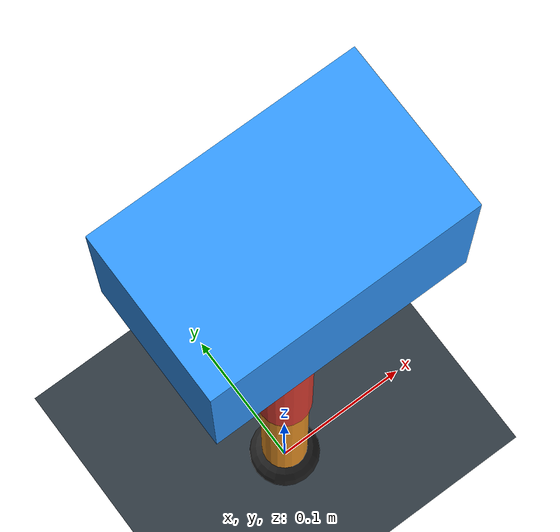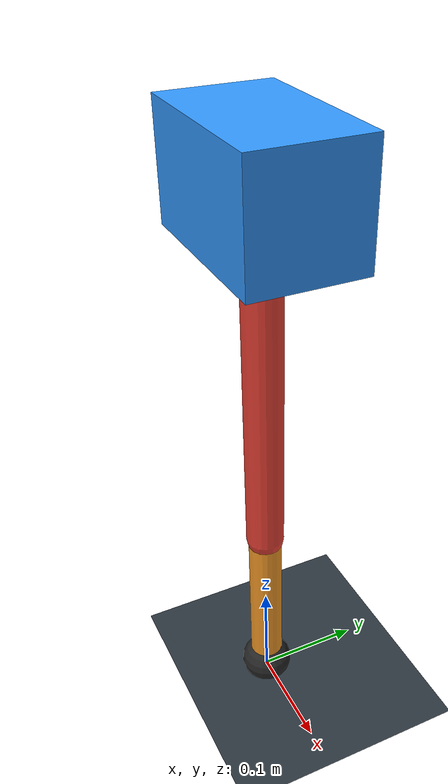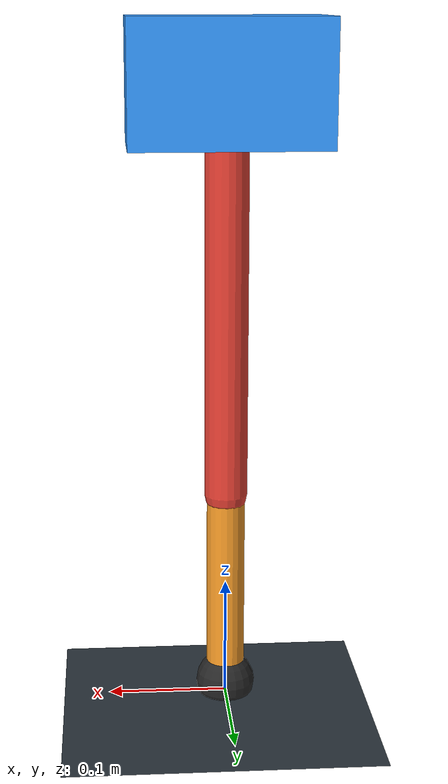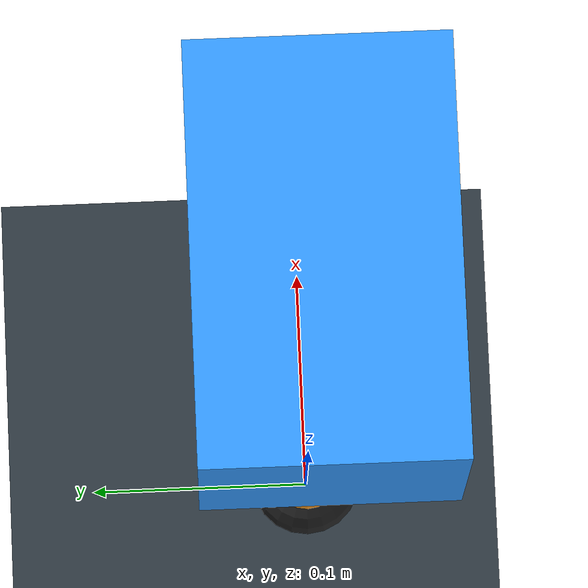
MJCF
<mujoco model="single_axis_two_bar">
  <compiler angle="radian" inertiafromgeom="true"/>
  <option timestep="0.001" integrator="implicitfast" gravity="0 0 -9.81"/>
  <default>
    <joint damping="0.08"/>
    <geom friction="1.2 0.01 0.0001" condim="3"/>
  </default>
  <worldbody>
    <geom name="floor" type="plane" size="5 5 0.1" rgba="0.18 0.22 0.25 1"/>
    <body name="carriage" pos="0 0 0.5206131024114541">
      <joint name="pole_slide" type="slide" axis="0 0 1"/>
      <geom name="payload" type="box" size="0.08 0.05 0.05" mass="2.16515517497439" rgba="0.2 0.6 1 1"/>
      <body name="thigh" pos="0 0 0">
        <joint name="hip" type="hinge" axis="0 1 0"/>
        <geom name="thigh_link" type="capsule" fromto="0 0 0 0 0 -0.34088150849415116" size="0.018" mass="0.24288257915380587" rgba="0.9 0.25 0.2 1"/>
        <body name="shank" pos="0 0 -0.34088150849415116">
          <joint name="knee" type="hinge" axis="0 1 0"/>
          <geom name="shank_link" type="capsule" fromto="0 0 0 0 0 -0.1700598341980695" size="0.016" mass="0.12116987900857173" rgba="0.95 0.6 0.15 1"/>
          <geom name="foot" type="sphere" pos="0 0 -0.1700598341980695" size="0.025" mass="0.03" rgba="0.15 0.15 0.15 1"/>
          <site name="toe" pos="0 0 -0.1700598341980695" size="0.008"/>
        </body>
      </body>
    </body>
  </worldbody>
  <actuator>
    <motor name="hip_motor" joint="hip" ctrlrange="-13.364439968478683 13.364439968478683"/>
    <motor name="knee_motor" joint="knee" ctrlrange="-75.5726255518141 75.5726255518141"/>
  </actuator>
</mujoco>
